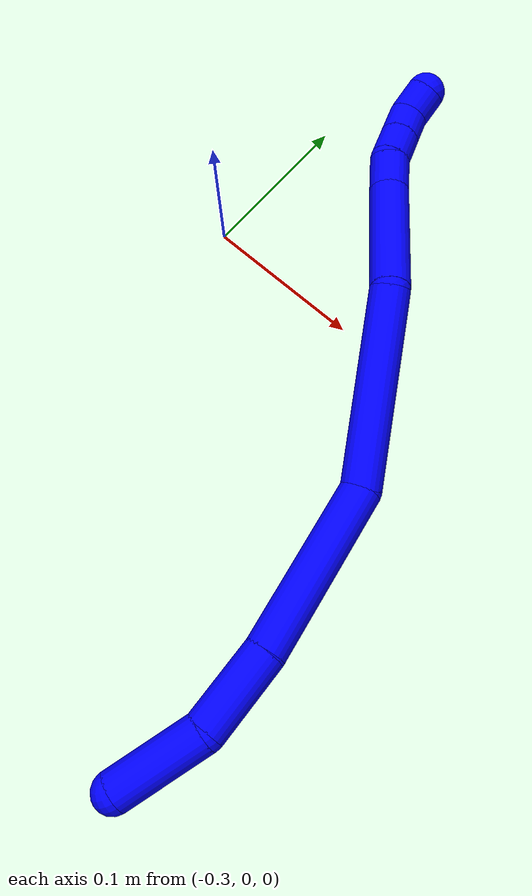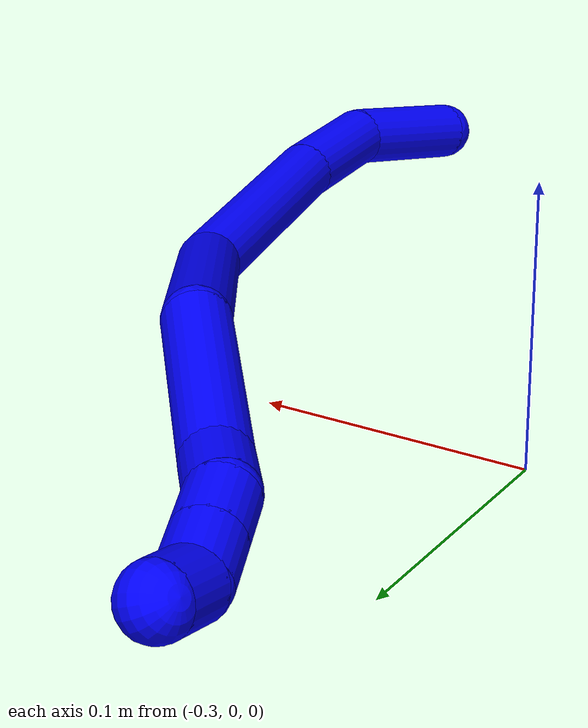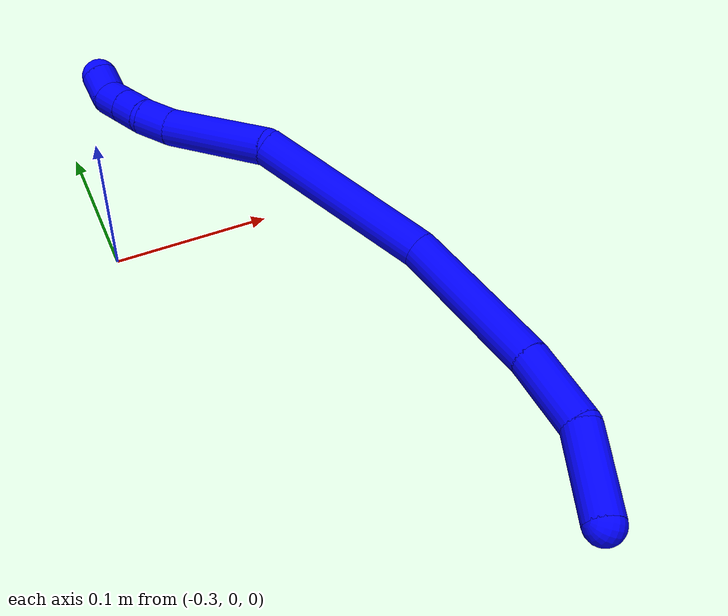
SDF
<sdf version="1.7">
 <world name="default">
  <plugin name="TubeGeneratorPlugin" filename="libtube_generator_plugin.so"/>
  <model name="photoneo_s_sensor">
   <static>1</static>
   <pose>0 0 2 1.57079 1.57079 3.14159</pose>
   <link name="link">
    <inertial><mass>0.1</mass></inertial>
    <sensor name="sensor" type="depth">
     <update_rate>30</update_rate>
     <camera>
      <horizontal_fov>1.22</horizontal_fov>
      <image><width>1920</width><height>1200</height><format>B8G8R8</format></image>
      <clip><near>0.1</near><far>4</far></clip>
      <depth_camera><output>points</output></depth_camera>
     </camera>
     <plugin name="camera_plugin" filename="libgazebo_ros_depth_camera.so">
      <baseline>0.2</baseline>
      <alwaysOn>1</alwaysOn>
      <updateRate>0.0</updateRate>
      <cameraName>camera_ir</cameraName>
      <imageTopicName>/camera/color/image_raw</imageTopicName>
      <cameraInfoTopicName>/camera/color/camera_info</cameraInfoTopicName>
      <depthImageTopicName>/camera/depth/image_raw</depthImageTopicName>
      <depthImageCameraInfoTopicName>/camera/depth/camera_info</depthImageCameraInfoTopicName>
      <pointCloudTopicName>/camera/depth/points</pointCloudTopicName>
      <frameName>fr_optical</frameName>
      <pointCloudCutoff>0.1</pointCloudCutoff>
      <pointCloudCutoffMax>2.0</pointCloudCutoffMax>
      <distortionK1>0</distortionK1>
      <distortionK2>0</distortionK2>
      <distortionK3>0</distortionK3>
      <distortionT1>0</distortionT1>
      <distortionT2>0</distortionT2>
      <CxPrime>0</CxPrime>
      <Cx>0</Cx>
      <Cy>0</Cy>
      <focalLength>0</focalLength>
      <hackBaseline>0</hackBaseline>
     </plugin>
    </sensor>
   </link>
  </model>
  <gravity>0 0 -9.8</gravity>
  <magnetic_field>6e-06 2.3e-05 -4.2e-05</magnetic_field>
  <atmosphere type="adiabatic"/>
  <physics name="default_physics" default="0" type="ode">
   <max_step_size>0.003</max_step_size>
   <real_time_factor>1</real_time_factor>
   <real_time_update_rate>1000</real_time_update_rate>
   <max_contacts>10000</max_contacts>
   <ode>
    <solver>
     <type>quick</type>
     <iters>100</iters>
     <sor>1.3</sor>
     <use_dynamic_moi_rescaling>0</use_dynamic_moi_rescaling>
    </solver>
    <constraints>
     <contact_max_correcting_vel>0</contact_max_correcting_vel>
     <contact_surface_layer>0.001</contact_surface_layer>
     <cfm>0</cfm>
     <erp>0.2</erp>
    </constraints>
   </ode>
  </physics>
  <scene><ambient>0.4 0.4 0.4 1</ambient><background>0.7 0.7 0.7 1</background><shadows>0</shadows></scene>
  <audio><device>default</device></audio>
  <spherical_coordinates>
   <surface_model>EARTH_WGS84</surface_model>
   <latitude_deg>0</latitude_deg>
   <longitude_deg>0</longitude_deg>
   <elevation>0</elevation>
   <heading_deg>0</heading_deg>
  </spherical_coordinates>
  <model name="bin">
   <static>1</static>
   <link name="bottom">
    <collision name="collision-bottom">
     <pose>0 0 -0.01 0 -0 0</pose>
     <geometry><box><size>0.8 0.6 0.02</size></box></geometry>
     <surface>
      <friction><ode><mu>100</mu><mu2>100</mu2></ode></friction>
      <contact><collide_bitmask>65535</collide_bitmask></contact>
     </surface>
    </collision>
   </link>
   <link name="west_wall">
    <collision name="collision-west_wall">
     <pose>-0.41 0 0.1 0 -0 0</pose>
     <geometry><box><size>0.02 0.6 0.2</size></box></geometry>
     <surface>
      <friction><ode><mu>100</mu><mu2>100</mu2></ode></friction>
      <contact><collide_bitmask>65535</collide_bitmask></contact>
     </surface>
    </collision>
   </link>
   <link name="east_wall">
    <collision name="collision-east_wall">
     <pose>0.41 0 0.1 0 -0 0</pose>
     <geometry><box><size>0.02 0.6 0.2</size></box></geometry>
     <surface>
      <friction><ode><mu>100</mu><mu2>100</mu2></ode></friction>
      <contact><collide_bitmask>65535</collide_bitmask></contact>
     </surface>
    </collision>
   </link>
   <link name="south_wall">
    <collision name="collision-south_wall">
     <pose>0 -0.31 0.1 0 -0 0</pose>
     <geometry><box><size>0.8 0.02 0.2</size></box></geometry>
     <surface>
      <friction><ode><mu>100</mu><mu2>100</mu2></ode></friction>
      <contact><collide_bitmask>65535</collide_bitmask></contact>
     </surface>
    </collision>
   </link>
   <link name="north_wall">
    <collision name="collision-north_wall">
     <pose>0 0.31 0.1 0 -0 0</pose>
     <geometry><box><size>0.8 0.02 0.2</size></box></geometry>
     <surface>
      <friction><ode><mu>100</mu><mu2>100</mu2></ode></friction>
      <contact><collide_bitmask>65535</collide_bitmask></contact>
     </surface>
    </collision>
   </link>
  </model>
  <model name="1">
   <static>0</static>
   <link name="1">
    <collision name="collision-cylinder-e_1_1_4">
     <pose>-0.007657 0.027472 -0.002287 -1.65386 -0.270924 0.294092</pose>
     <geometry><cylinder><radius>0.0125</radius><length>0.057221</length></cylinder></geometry>
     <surface>
      <friction><ode><mu>1.16</mu><mu2>1.16</mu2><slip1>0</slip1><slip2>0</slip2></ode></friction>
      <contact><ode><kp>1e+06</kp><kd>1</kd><max_vel>0</max_vel><min_depth>0.001</min_depth></ode></contact>
     </surface>
    </collision>
    <visual name="visual-cylinder-e_1_1_4">
     <pose>-0.007657 0.027472 -0.002287 -1.65386 -0.270924 0.294092</pose>
     <geometry><cylinder><radius>0.0125</radius><length>0.057221</length></cylinder></geometry>
     <material><ambient>0 0 1 1</ambient></material>
    </visual>
    <collision name="collision-cylinder-e_2_4_5">
     <pose>-0.01367 0.080034 -0.012263 -1.86815 0.062555 -0.084573</pose>
     <geometry><cylinder><radius>0.0125</radius><length>0.052586</length></cylinder></geometry>
     <surface>
      <friction><ode><mu>1.16</mu><mu2>1.16</mu2><slip1>0</slip1><slip2>0</slip2></ode></friction>
      <contact><ode><kp>1e+06</kp><kd>1</kd><max_vel>0</max_vel><min_depth>0.001</min_depth></ode></contact>
     </surface>
    </collision>
    <visual name="visual-cylinder-e_2_4_5">
     <pose>-0.01367 0.080034 -0.012263 -1.86815 0.062555 -0.084573</pose>
     <geometry><cylinder><radius>0.0125</radius><length>0.052586</length></cylinder></geometry>
     <material><ambient>0 0 1 1</ambient></material>
    </visual>
    <collision name="collision-cylinder-e_3_5_6">
     <pose>-0.004709 0.154153 -0.040698 -1.97109 0.136592 -0.205707</pose>
     <geometry><cylinder><radius>0.0125</radius><length>0.107478</length></cylinder></geometry>
     <surface>
      <friction><ode><mu>1.16</mu><mu2>1.16</mu2><slip1>0</slip1><slip2>0</slip2></ode></friction>
      <contact><ode><kp>1e+06</kp><kd>1</kd><max_vel>0</max_vel><min_depth>0.001</min_depth></ode></contact>
     </surface>
    </collision>
    <visual name="visual-cylinder-e_3_5_6">
     <pose>-0.004709 0.154153 -0.040698 -1.97109 0.136592 -0.205707</pose>
     <geometry><cylinder><radius>0.0125</radius><length>0.107478</length></cylinder></geometry>
     <material><ambient>0 0 1 1</ambient></material>
    </visual>
    <collision name="collision-cylinder-e_4_6_7">
     <pose>0.007736 0.243068 -0.106775 -2.42002 0.084709 -0.22371</pose>
     <geometry><cylinder><radius>0.0125</radius><length>0.121194</length></cylinder></geometry>
     <surface>
      <friction><ode><mu>1.16</mu><mu2>1.16</mu2><slip1>0</slip1><slip2>0</slip2></ode></friction>
      <contact><ode><kp>1e+06</kp><kd>1</kd><max_vel>0</max_vel><min_depth>0.001</min_depth></ode></contact>
     </surface>
    </collision>
    <visual name="visual-cylinder-e_4_6_7">
     <pose>0.007736 0.243068 -0.106775 -2.42002 0.084709 -0.22371</pose>
     <geometry><cylinder><radius>0.0125</radius><length>0.121194</length></cylinder></geometry>
     <material><ambient>0 0 1 1</ambient></material>
    </visual>
    <collision name="collision-cylinder-e_5_7_8">
     <pose>0.03142 0.306925 -0.176046 -2.35552 0.501135 -1.10611</pose>
     <geometry><cylinder><radius>0.0125</radius><length>0.077256</length></cylinder></geometry>
     <surface>
      <friction><ode><mu>1.16</mu><mu2>1.16</mu2><slip1>0</slip1><slip2>0</slip2></ode></friction>
      <contact><ode><kp>1e+06</kp><kd>1</kd><max_vel>0</max_vel><min_depth>0.001</min_depth></ode></contact>
     </surface>
    </collision>
    <visual name="visual-cylinder-e_5_7_8">
     <pose>0.03142 0.306925 -0.176046 -2.35552 0.501135 -1.10611</pose>
     <geometry><cylinder><radius>0.0125</radius><length>0.077256</length></cylinder></geometry>
     <material><ambient>0 0 1 1</ambient></material>
    </visual>
    <collision name="collision-cylinder-e_6_8_9">
     <pose>0.053542 0.337981 -0.208337 -2.4381 0.3146 -0.815858</pose>
     <geometry><cylinder><radius>0.0125</radius><length>0.023034</length></cylinder></geometry>
     <surface>
      <friction><ode><mu>1.16</mu><mu2>1.16</mu2><slip1>0</slip1><slip2>0</slip2></ode></friction>
      <contact><ode><kp>1e+06</kp><kd>1</kd><max_vel>0</max_vel><min_depth>0.001</min_depth></ode></contact>
     </surface>
    </collision>
    <visual name="visual-cylinder-e_6_8_9">
     <pose>0.053542 0.337981 -0.208337 -2.4381 0.3146 -0.815858</pose>
     <geometry><cylinder><radius>0.0125</radius><length>0.023034</length></cylinder></geometry>
     <material><ambient>0 0 1 1</ambient></material>
    </visual>
    <collision name="collision-cylinder-e_7_9_10">
     <pose>0.060685 0.353684 -0.221345 -2.06616 0.350348 -0.577027</pose>
     <geometry><cylinder><radius>0.0125</radius><length>0.020858</length></cylinder></geometry>
     <surface>
      <friction><ode><mu>1.16</mu><mu2>1.16</mu2><slip1>0</slip1><slip2>0</slip2></ode></friction>
      <contact><ode><kp>1e+06</kp><kd>1</kd><max_vel>0</max_vel><min_depth>0.001</min_depth></ode></contact>
     </surface>
    </collision>
    <visual name="visual-cylinder-e_7_9_10">
     <pose>0.060685 0.353684 -0.221345 -2.06616 0.350348 -0.577027</pose>
     <geometry><cylinder><radius>0.0125</radius><length>0.020858</length></cylinder></geometry>
     <material><ambient>0 0 1 1</ambient></material>
    </visual>
    <collision name="collision-cylinder-e_8_10_11">
     <pose>0.067695 0.370683 -0.230551 -2.06817 0.345266 -0.570175</pose>
     <geometry><cylinder><radius>0.0125</radius><length>0.020269</length></cylinder></geometry>
     <surface>
      <friction><ode><mu>1.16</mu><mu2>1.16</mu2><slip1>0</slip1><slip2>0</slip2></ode></friction>
      <contact><ode><kp>1e+06</kp><kd>1</kd><max_vel>0</max_vel><min_depth>0.001</min_depth></ode></contact>
     </surface>
    </collision>
    <visual name="visual-cylinder-e_8_10_11">
     <pose>0.067695 0.370683 -0.230551 -2.06817 0.345266 -0.570175</pose>
     <geometry><cylinder><radius>0.0125</radius><length>0.020269</length></cylinder></geometry>
     <material><ambient>0 0 1 1</ambient></material>
    </visual>
    <collision name="collision-cylinder-e_9_11_2">
     <pose>0.0696 0.388078 -0.239278 -2.00473 -0.152302 0.23777</pose>
     <geometry><cylinder><radius>0.0125</radius><length>0.020104</length></cylinder></geometry>
     <surface>
      <friction><ode><mu>1.16</mu><mu2>1.16</mu2><slip1>0</slip1><slip2>0</slip2></ode></friction>
      <contact><ode><kp>1e+06</kp><kd>1</kd><max_vel>0</max_vel><min_depth>0.001</min_depth></ode></contact>
     </surface>
    </collision>
    <visual name="visual-cylinder-e_9_11_2">
     <pose>0.0696 0.388078 -0.239278 -2.00473 -0.152302 0.23777</pose>
     <geometry><cylinder><radius>0.0125</radius><length>0.020104</length></cylinder></geometry>
     <material><ambient>0 0 1 1</ambient></material>
    </visual>
    <collision name="collision-sphere-2">
     <pose>0.068075 0.397093 -0.243456 0 -0 0</pose>
     <geometry><sphere><radius>0.0125</radius></sphere></geometry>
     <surface>
      <friction><ode><mu>1.16</mu><mu2>1.16</mu2><slip1>0</slip1><slip2>0</slip2></ode></friction>
      <contact><ode><kp>1e+06</kp><kd>1</kd><max_vel>0</max_vel><min_depth>0.001</min_depth></ode></contact>
     </surface>
    </collision>
    <visual name="visual-sphere-2">
     <pose>0.068075 0.397093 -0.243456 0 -0 0</pose>
     <geometry><sphere><radius>0.0125</radius></sphere></geometry>
     <material><ambient>0 0 1 1</ambient></material>
    </visual>
    <collision name="collision-sphere-11">
     <pose>0.071125 0.379064 -0.235101 0 -0 0</pose>
     <geometry><sphere><radius>0.0125</radius></sphere></geometry>
     <surface>
      <friction><ode><mu>1.16</mu><mu2>1.16</mu2><slip1>0</slip1><slip2>0</slip2></ode></friction>
      <contact><ode><kp>1e+06</kp><kd>1</kd><max_vel>0</max_vel><min_depth>0.001</min_depth></ode></contact>
     </surface>
    </collision>
    <visual name="visual-sphere-11">
     <pose>0.071125 0.379064 -0.235101 0 -0 0</pose>
     <geometry><sphere><radius>0.0125</radius></sphere></geometry>
     <material><ambient>0 0 1 1</ambient></material>
    </visual>
    <collision name="collision-sphere-10">
     <pose>0.064265 0.362302 -0.226001 0 -0 0</pose>
     <geometry><sphere><radius>0.0125</radius></sphere></geometry>
     <surface>
      <friction><ode><mu>1.16</mu><mu2>1.16</mu2><slip1>0</slip1><slip2>0</slip2></ode></friction>
      <contact><ode><kp>1e+06</kp><kd>1</kd><max_vel>0</max_vel><min_depth>0.001</min_depth></ode></contact>
     </surface>
    </collision>
    <visual name="visual-sphere-10">
     <pose>0.064265 0.362302 -0.226001 0 -0 0</pose>
     <geometry><sphere><radius>0.0125</radius></sphere></geometry>
     <material><ambient>0 0 1 1</ambient></material>
    </visual>
    <collision name="collision-sphere-9">
     <pose>0.057106 0.345065 -0.216688 0 -0 0</pose>
     <geometry><sphere><radius>0.0125</radius></sphere></geometry>
     <surface>
      <friction><ode><mu>1.16</mu><mu2>1.16</mu2><slip1>0</slip1><slip2>0</slip2></ode></friction>
      <contact><ode><kp>1e+06</kp><kd>1</kd><max_vel>0</max_vel><min_depth>0.001</min_depth></ode></contact>
     </surface>
    </collision>
    <visual name="visual-sphere-9">
     <pose>0.057106 0.345065 -0.216688 0 -0 0</pose>
     <geometry><sphere><radius>0.0125</radius></sphere></geometry>
     <material><ambient>0 0 1 1</ambient></material>
    </visual>
    <collision name="collision-sphere-4">
     <pose>-0.015314 0.054944 -0.004574 0 -0 0</pose>
     <geometry><sphere><radius>0.0125</radius></sphere></geometry>
     <surface>
      <friction><ode><mu>1.16</mu><mu2>1.16</mu2><slip1>0</slip1><slip2>0</slip2></ode></friction>
      <contact><ode><kp>1e+06</kp><kd>1</kd><max_vel>0</max_vel><min_depth>0.001</min_depth></ode></contact>
     </surface>
    </collision>
    <visual name="visual-sphere-4">
     <pose>-0.015314 0.054944 -0.004574 0 -0 0</pose>
     <geometry><sphere><radius>0.0125</radius></sphere></geometry>
     <material><ambient>0 0 1 1</ambient></material>
    </visual>
    <collision name="collision-sphere-1">
     <geometry><sphere><radius>0.0125</radius></sphere></geometry>
     <surface>
      <friction><ode><mu>1.16</mu><mu2>1.16</mu2><slip1>0</slip1><slip2>0</slip2></ode></friction>
      <contact><ode><kp>1e+06</kp><kd>1</kd><max_vel>0</max_vel><min_depth>0.001</min_depth></ode></contact>
     </surface>
    </collision>
    <visual name="visual-sphere-1">
     <geometry><sphere><radius>0.0125</radius></sphere></geometry>
     <material><ambient>0 0 1 1</ambient></material>
    </visual>
    <collision name="collision-sphere-8">
     <pose>0.049978 0.330896 -0.199985 0 -0 0</pose>
     <geometry><sphere><radius>0.0125</radius></sphere></geometry>
     <surface>
      <friction><ode><mu>1.16</mu><mu2>1.16</mu2><slip1>0</slip1><slip2>0</slip2></ode></friction>
      <contact><ode><kp>1e+06</kp><kd>1</kd><max_vel>0</max_vel><min_depth>0.001</min_depth></ode></contact>
     </surface>
    </collision>
    <visual name="visual-sphere-8">
     <pose>0.049978 0.330896 -0.199985 0 -0 0</pose>
     <geometry><sphere><radius>0.0125</radius></sphere></geometry>
     <material><ambient>0 0 1 1</ambient></material>
    </visual>
    <collision name="collision-sphere-5">
     <pose>-0.012026 0.105124 -0.019951 0 -0 0</pose>
     <geometry><sphere><radius>0.0125</radius></sphere></geometry>
     <surface>
      <friction><ode><mu>1.16</mu><mu2>1.16</mu2><slip1>0</slip1><slip2>0</slip2></ode></friction>
      <contact><ode><kp>1e+06</kp><kd>1</kd><max_vel>0</max_vel><min_depth>0.001</min_depth></ode></contact>
     </surface>
    </collision>
    <visual name="visual-sphere-5">
     <pose>-0.012026 0.105124 -0.019951 0 -0 0</pose>
     <geometry><sphere><radius>0.0125</radius></sphere></geometry>
     <material><ambient>0 0 1 1</ambient></material>
    </visual>
    <collision name="collision-sphere-6">
     <pose>0.002609 0.203183 -0.061444 0 -0 0</pose>
     <geometry><sphere><radius>0.0125</radius></sphere></geometry>
     <surface>
      <friction><ode><mu>1.16</mu><mu2>1.16</mu2><slip1>0</slip1><slip2>0</slip2></ode></friction>
      <contact><ode><kp>1e+06</kp><kd>1</kd><max_vel>0</max_vel><min_depth>0.001</min_depth></ode></contact>
     </surface>
    </collision>
    <visual name="visual-sphere-6">
     <pose>0.002609 0.203183 -0.061444 0 -0 0</pose>
     <geometry><sphere><radius>0.0125</radius></sphere></geometry>
     <material><ambient>0 0 1 1</ambient></material>
    </visual>
    <collision name="collision-sphere-7">
     <pose>0.012863 0.282953 -0.152107 0 -0 0</pose>
     <geometry><sphere><radius>0.0125</radius></sphere></geometry>
     <surface>
      <friction><ode><mu>1.16</mu><mu2>1.16</mu2><slip1>0</slip1><slip2>0</slip2></ode></friction>
      <contact><ode><kp>1e+06</kp><kd>1</kd><max_vel>0</max_vel><min_depth>0.001</min_depth></ode></contact>
     </surface>
    </collision>
    <visual name="visual-sphere-7">
     <pose>0.012863 0.282953 -0.152107 0 -0 0</pose>
     <geometry><sphere><radius>0.0125</radius></sphere></geometry>
     <material><ambient>0 0 1 1</ambient></material>
    </visual>
    <inertial>
     <pose>0.013945 0.211993 -0.10118 0 -0 0</pose>
     <mass>0.5</mass>
     <inertia>
      <ixx>0.000223</ixx>
      <ixy>0</ixy>
      <ixz>0</ixz>
      <iyy>-0.000211</iyy>
      <iyz>0</iyz>
      <izz>-0.000324</izz>
     </inertia>
    </inertial>
   </link>
   <pose>-0.117811 -0.287639 0.012359 -2.88497 1.06498 3.13146</pose>
  </model>
 </world>
</sdf>
